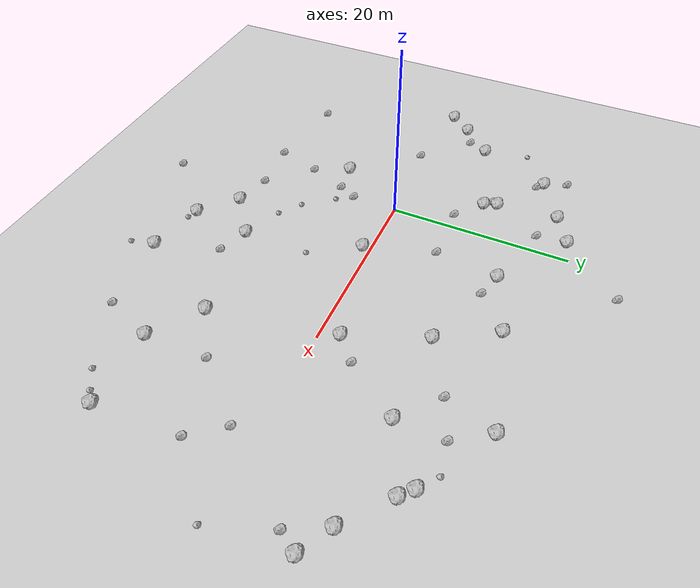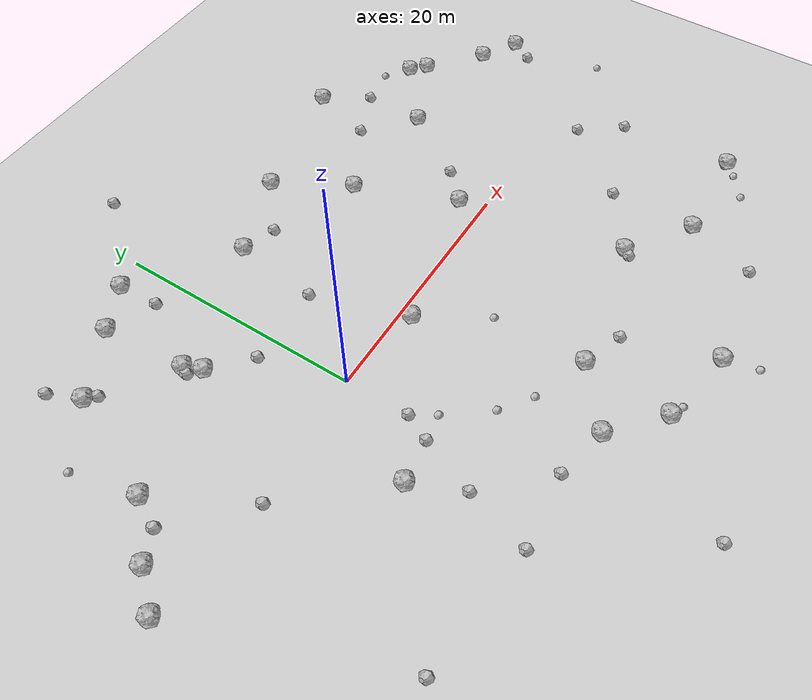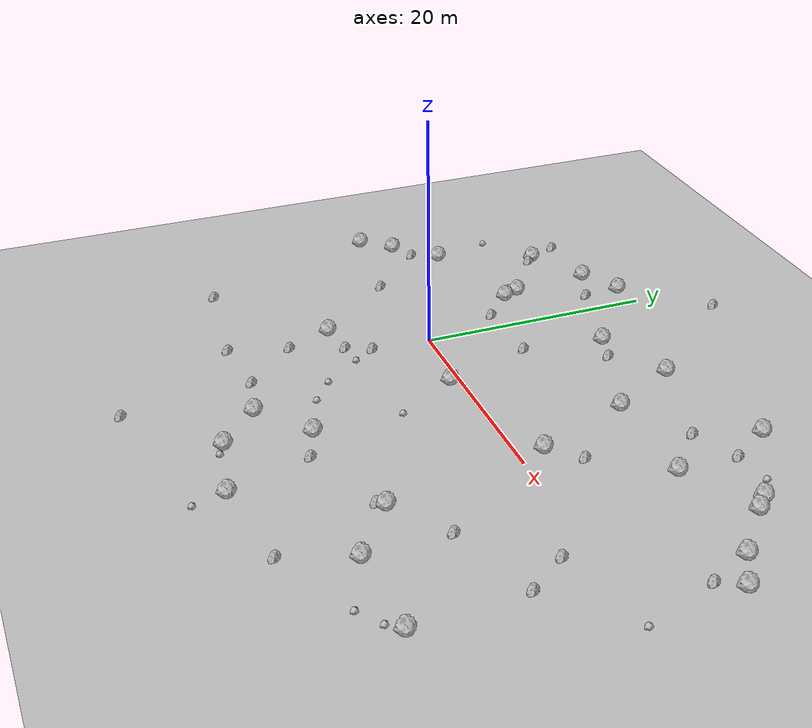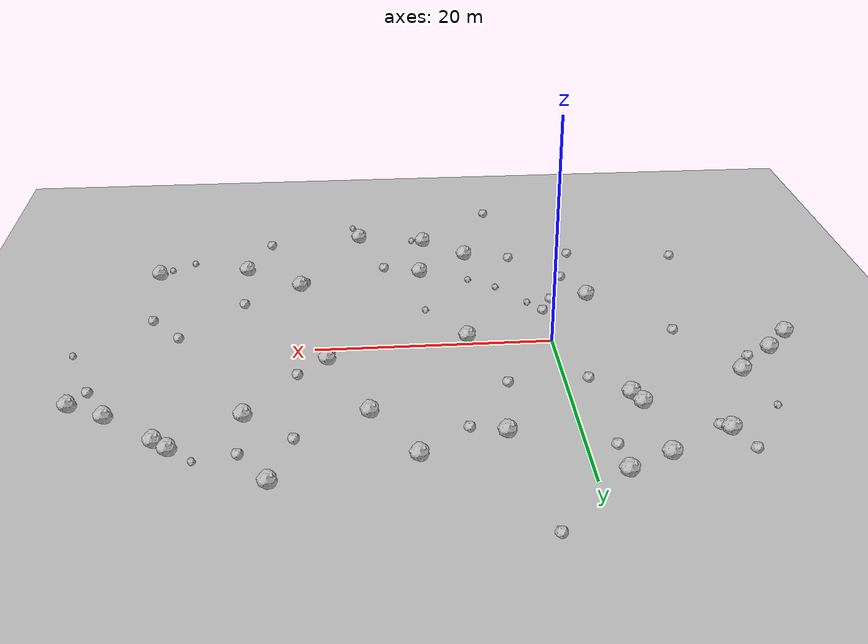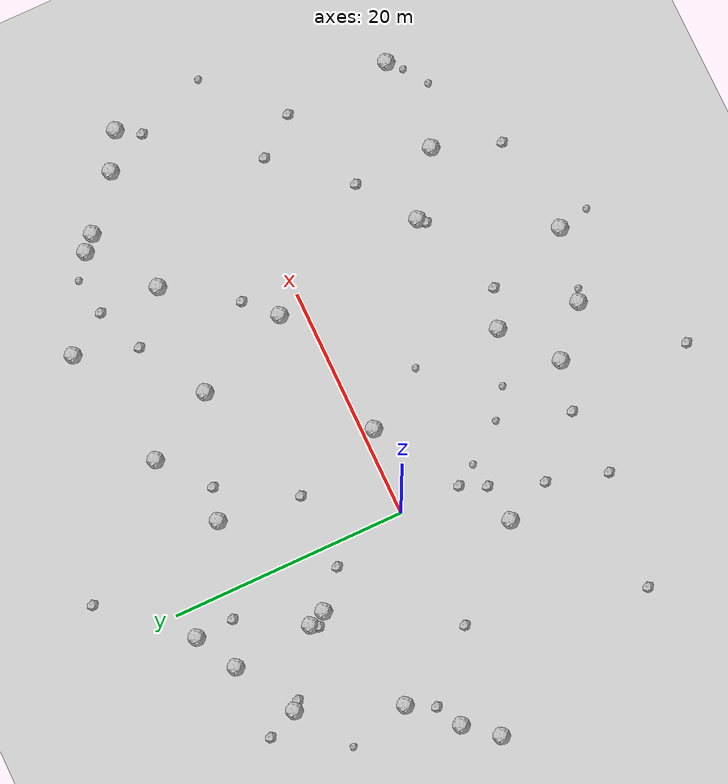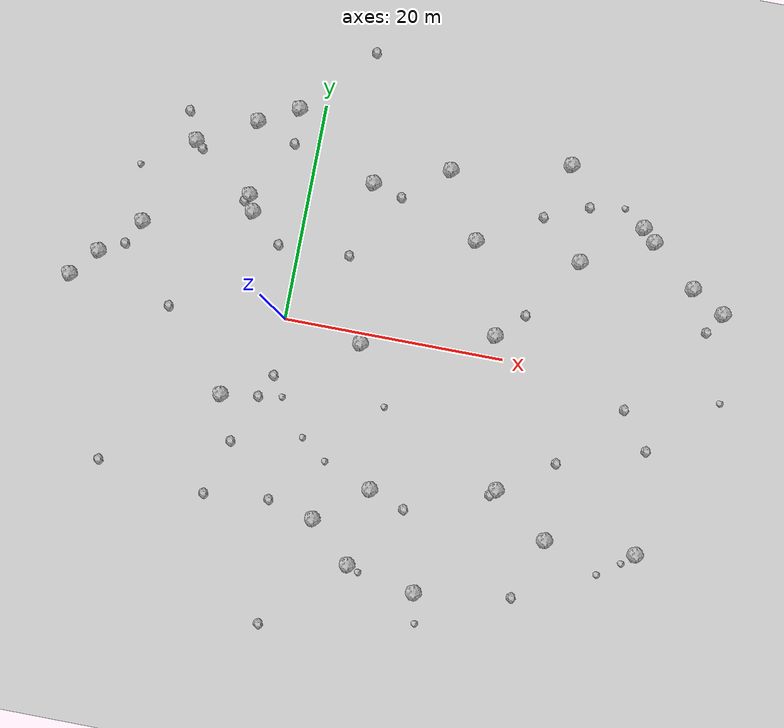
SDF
<sdf version="1.6">
 <world name="default">
  <include><uri>model://custom_ground</uri></include>
  <include><uri>model://sun</uri></include>
  <model name="rock1_0_0">
   <include><uri>model://rock1</uri><pose>-4.303871969672123 -7.698992740027663 0.5 0 0 0</pose></include>
  </model>
  <model name="rock1_0_1">
   <include><uri>model://rock1</uri><pose>5.9163128607475315 -17.05584468435616 0.5 0 0 0</pose></include>
  </model>
  <model name="rock1_0_2">
   <include><uri>model://rock1</uri><pose>9.714353764370642 -20.453960711691593 0.5 0 0 0</pose></include>
  </model>
  <model name="rock1_0_3">
   <include><uri>model://rock1</uri><pose>25.323442539957206 10.061556025729466 0.5 0 0 0</pose></include>
  </model>
  <model name="rock1_0_4">
   <include><uri>model://rock1</uri><pose>-2.310983132698393 19.217648858901462 0.5 0 0 0</pose></include>
  </model>
  <model name="rock1_0_5">
   <include><uri>model://rock1</uri><pose>26.554848240603846 -15.099107565912519 0.5 0 0 0</pose></include>
  </model>
  <model name="rock1_0_6">
   <include><uri>model://rock1</uri><pose>-17.71179040490471 2.993496011803977 0.5 0 0 0</pose></include>
  </model>
  <model name="rock1_0_7">
   <include><uri>model://rock1</uri><pose>35.8151594749186 9.527997872945114 0.5 0 0 0</pose></include>
  </model>
  <model name="rock1_0_8">
   <include><uri>model://rock1</uri><pose>34.68750626915344 -14.843394507315885 0.5 0 0 0</pose></include>
  </model>
  <model name="rock1_0_9">
   <include><uri>model://rock1</uri><pose>-5.272296925186534 10.536026966289093 0.5 0 0 0</pose></include>
  </model>
  <model name="rock1_0_10">
   <include><uri>model://rock1</uri><pose>15.958380754146937 -21.761986099890827 0.5 0 0 0</pose></include>
  </model>
  <model name="rock1_0_11">
   <include><uri>model://rock1</uri><pose>31.652774189917352 13.078066165233707 0.5 0 0 0</pose></include>
  </model>
  <model name="rock1_0_12">
   <include><uri>model://rock1</uri><pose>10.44710201669363 -13.554494029351826 0.5 0 0 0</pose></include>
  </model>
  <model name="rock1_0_13">
   <include><uri>model://rock1</uri><pose>18.989562190907293 2.0563418041743944 0.5 0 0 0</pose></include>
  </model>
  <model name="rock1_0_14">
   <include><uri>model://rock1</uri><pose>-19.85557977249265 0.45634263560155475 0.5 0 0 0</pose></include>
  </model>
  <model name="rock1_0_15">
   <include><uri>model://rock1</uri><pose>-14.357400732031294 6.374465759722149 0.5 0 0 0</pose></include>
  </model>
  <model name="rock1_0_16">
   <include><uri>model://rock1</uri><pose>15.723926547553333 10.230573015667979 0.5 0 0 0</pose></include>
  </model>
  <model name="rock1_0_17">
   <include><uri>model://rock1</uri><pose>23.05021433029861 18.67886218263866 0.5 0 0 0</pose></include>
  </model>
  <model name="rock1_0_18">
   <include><uri>model://rock1</uri><pose>-4.685007277369856 9.098412034277615 0.5 0 0 0</pose></include>
  </model>
  <model name="rock1_0_19">
   <include><uri>model://rock1</uri><pose>7.179717710703233 -0.8898872471285095 0.5 0 0 0</pose></include>
  </model>
  <model name="rock1_0_20">
   <include><uri>model://rock1</uri><pose>-11.01782244674398 14.607693531894498 0.5 0 0 0</pose></include>
  </model>
  <model name="rock1_0_21">
   <include><uri>model://rock1</uri><pose>5.618224780130859 13.695390029938679 0.5 0 0 0</pose></include>
  </model>
  <model name="rock1_0_22">
   <include><uri>model://rock1</uri><pose>21.529246710960876 -11.51920177784595 0.5 0 0 0</pose></include>
  </model>
  <model name="rock1_0_23">
   <include><uri>model://rock1</uri><pose>38.83185445872309 7.750444050828499 0.5 0 0 0</pose></include>
  </model>
  <model name="rock1_0_24">
   <include><uri>model://rock1</uri><pose>-5.828184617062986 17.375399389970475 0.5 0 0 0</pose></include>
  </model>
  <model name="rock1_0_25">
   <include><uri>model://rock1</uri><pose>12.311028002071843 16.19167625470226 0.5 0 0 0</pose></include>
  </model>
  <model name="rock1_0_26">
   <include><uri>model://rock1</uri><pose>30.485595033864826 14.196537078749898 0.5 0 0 0</pose></include>
  </model>
  <model name="rock2_0_0">
   <include><uri>model://rock2</uri><pose>-5.655811998859752 9.93881343701851 0.3 0 0 0</pose></include>
  </model>
  <model name="rock2_0_1">
   <include><uri>model://rock2</uri><pose>-0.9755510134310263 -7.25715896327387 0.3 0 0 0</pose></include>
  </model>
  <model name="rock2_0_2">
   <include><uri>model://rock2</uri><pose>0.03083017110095554 -5.164928305336886 0.3 0 0 0</pose></include>
  </model>
  <model name="rock2_0_3">
   <include><uri>model://rock2</uri><pose>1.712241048064982 -16.11732674553851 0.3 0 0 0</pose></include>
  </model>
  <model name="rock2_0_4">
   <include><uri>model://rock2</uri><pose>2.927546864962686 -26.992558756298074 0.3 0 0 0</pose></include>
  </model>
  <model name="rock2_0_5">
   <include><uri>model://rock2</uri><pose>-2.6371367697544343 -11.64593422712996 0.3 0 0 0</pose></include>
  </model>
  <model name="rock2_0_6">
   <include><uri>model://rock2</uri><pose>21.02024706593648 -12.086598903685115 0.3 0 0 0</pose></include>
  </model>
  <model name="rock2_0_7">
   <include><uri>model://rock2</uri><pose>34.085339655651715 -5.679567171977599 0.3 0 0 0</pose></include>
  </model>
  <model name="rock2_0_8">
   <include><uri>model://rock2</uri><pose>4.6623023242635 6.75378952803937 0.3 0 0 0</pose></include>
  </model>
  <model name="rock2_0_9">
   <include><uri>model://rock2</uri><pose>21.372282109192568 13.49369800263802 0.3 0 0 0</pose></include>
  </model>
  <model name="rock2_0_10">
   <include><uri>model://rock2</uri><pose>13.708496229354203 -14.761446469056924 0.3 0 0 0</pose></include>
  </model>
  <model name="rock2_0_11">
   <include><uri>model://rock2</uri><pose>31.543400338378163 -2.3849294221681987 0.3 0 0 0</pose></include>
  </model>
  <model name="rock2_0_12">
   <include><uri>model://rock2</uri><pose>-12.16851019745217 17.209461919084454 0.3 0 0 0</pose></include>
  </model>
  <model name="rock2_0_13">
   <include><uri>model://rock2</uri><pose>-13.930751791724463 -15.418076374050045 0.3 0 0 0</pose></include>
  </model>
  <model name="rock2_0_14">
   <include><uri>model://rock2</uri><pose>3.617569898033423 25.69160866633473 0.3 0 0 0</pose></include>
  </model>
  <model name="rock2_0_15">
   <include><uri>model://rock2</uri><pose>-1.8381047609254821 6.555805371337286 0.3 0 0 0</pose></include>
  </model>
  <model name="rock2_0_16">
   <include><uri>model://rock2</uri><pose>24.51289740735328 -20.607124132699482 0.3 0 0 0</pose></include>
  </model>
  <model name="rock2_0_17">
   <include><uri>model://rock2</uri><pose>21.348190991509917 4.36050356824699 0.3 0 0 0</pose></include>
  </model>
  <model name="rock2_0_18">
   <include><uri>model://rock2</uri><pose>26.36925290754175 -8.230324765752343 0.3 0 0 0</pose></include>
  </model>
  <model name="rock2_0_19">
   <include><uri>model://rock2</uri><pose>-10.510080638918776 -0.7402578987915689 0.3 0 0 0</pose></include>
  </model>
  <model name="rock2_0_20">
   <include><uri>model://rock2</uri><pose>-4.103801918513351 -16.64841727230168 0.3 0 0 0</pose></include>
  </model>
  <model name="rock2_0_21">
   <include><uri>model://rock2</uri><pose>-10.360204183837528 13.979679406997263 0.3 0 0 0</pose></include>
  </model>
  <model name="rock2_0_22">
   <include><uri>model://rock2</uri><pose>-15.539690756024537 4.122393624724587 0.3 0 0 0</pose></include>
  </model>
  <model name="rock2_0_23">
   <include><uri>model://rock2</uri><pose>-2.1790019161837826 15.960783996637467 0.3 0 0 0</pose></include>
  </model>
  <model name="rock2_0_24">
   <include><uri>model://rock2</uri><pose>25.345435932296013 15.163115612763264 0.3 0 0 0</pose></include>
  </model>
  <model name="rock2_0_25">
   <include><uri>model://rock2</uri><pose>37.642726219892516 5.858644933942259 0.3 0 0 0</pose></include>
  </model>
  <model name="rock2_0_26">
   <include><uri>model://rock2</uri><pose>8.332791691693327 12.89409538920576 0.3 0 0 0</pose></include>
  </model>
  <model name="rock3_0_0">
   <include><uri>model://rock3</uri><pose>39.89255488215653 -0.24820263026142442 0.2 0 0 0</pose></include>
  </model>
  <model name="rock3_0_1">
   <include><uri>model://rock3</uri><pose>5.988484403392761 -11.909132262702563 0.2 0 0 0</pose></include>
  </model>
  <model name="rock3_0_2">
   <include><uri>model://rock3</uri><pose>16.5092301580449 -24.475595365562192 0.2 0 0 0</pose></include>
  </model>
  <model name="rock3_0_3">
   <include><uri>model://rock3</uri><pose>3.6301770657339887 -10.189726246160859 0.2 0 0 0</pose></include>
  </model>
  <model name="rock3_0_4">
   <include><uri>model://rock3</uri><pose>28.541456815868358 15.643446905492944 0.2 0 0 0</pose></include>
  </model>
  <model name="rock3_0_5">
   <include><uri>model://rock3</uri><pose>-15.653801268579745 11.504093667288316 0.2 0 0 0</pose></include>
  </model>
  <model name="rock3_0_6">
   <include><uri>model://rock3</uri><pose>33.58253191240175 -15.901977277466866 0.2 0 0 0</pose></include>
  </model>
  <model name="rock3_0_7">
   <include><uri>model://rock3</uri><pose>31.6111042879848 -17.268559225382038 0.2 0 0 0</pose></include>
  </model>
  <model name="rock3_0_8">
   <include><uri>model://rock3</uri><pose>10.325192344437866 -6.149578795458158 0.2 0 0 0</pose></include>
  </model>
  <model name="rock3_0_9">
   <include><uri>model://rock3</uri><pose>1.1406888747348596 -6.9703985766711405 0.2 0 0 0</pose></include>
  </model>
  <model name="rock3_0_10">
   <include><uri>model://rock3</uri><pose>10.728649184169115 -20.991830837744452 0.2 0 0 0</pose></include>
  </model>
 </world>
</sdf>
